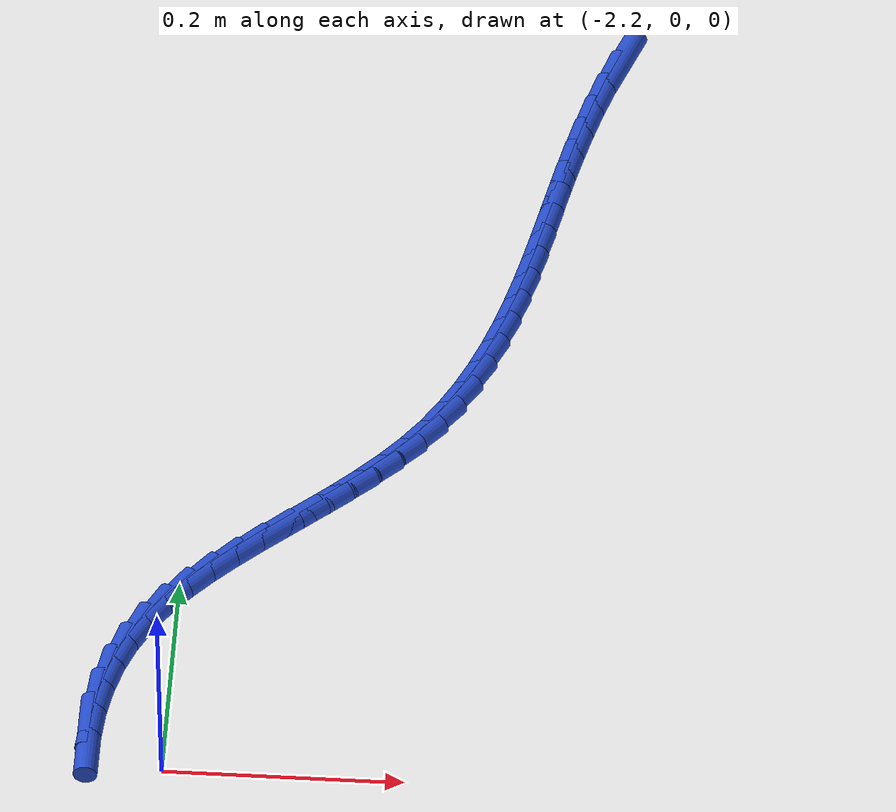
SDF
<sdf version="1.6">
 <world name="default">
  <model name="ground_plane">
   <static>1</static>
   <link name="link">
    <collision name="collision">
     <geometry><plane><normal>0 0 1</normal><size>100 100</size></plane></geometry>
     <surface><friction><ode><mu>100</mu><mu2>50</mu2></ode></friction></surface>
    </collision>
    <visual name="visual">
     <cast_shadows>0</cast_shadows>
     <geometry><plane><normal>0 0 1</normal><size>100 100</size></plane></geometry>
     <material>
      <script><uri>file://media/materials/scripts/gazebo.material</uri><name>Gazebo/WhiteGlow</name></script>
     </material>
    </visual>
   </link>
  </model>
  <model name="line">
   <link name="link_105">
    <pose>-1.857437634463661 0.8072421266115125 0.01 0 1.57 1.1970297892701074</pose>
    <collision name="collision">
     <geometry><cylinder><radius>0.01</radius><length>0.08</length></cylinder></geometry>
    </collision>
    <visual name="visual">
     <material>
      <script><name>Gazebo/Blue</name><uri>file://media/materials/scripts/gazebo.material</uri></script>
     </material>
     <geometry><cylinder><radius>0.01</radius><length>0.08</length></cylinder></geometry>
    </visual>
   </link>
   <link name="link_106">
    <pose>-1.8682525401522974 0.7796673394154205 0.01 0 1.57 1.2478210569503176</pose>
    <collision name="collision">
     <geometry><cylinder><radius>0.01</radius><length>0.08</length></cylinder></geometry>
    </collision>
    <visual name="visual">
     <material>
      <script><name>Gazebo/Blue</name><uri>file://media/materials/scripts/gazebo.material</uri></script>
     </material>
     <geometry><cylinder><radius>0.01</radius><length>0.08</length></cylinder></geometry>
    </visual>
   </link>
   <link name="link_107">
    <pose>-1.8776730771193542 0.7515206809910155 0.01 0 1.57 1.2848237730151373</pose>
    <collision name="collision">
     <geometry><cylinder><radius>0.01</radius><length>0.08</length></cylinder></geometry>
    </collision>
    <visual name="visual">
     <material>
      <script><name>Gazebo/Blue</name><uri>file://media/materials/scripts/gazebo.material</uri></script>
     </material>
     <geometry><cylinder><radius>0.01</radius><length>0.08</length></cylinder></geometry>
    </visual>
   </link>
   <link name="link_108">
    <pose>-1.8858740834647103 0.7236291314131181 0.01 0 1.57 1.311639082944351</pose>
    <collision name="collision">
     <geometry><cylinder><radius>0.01</radius><length>0.08</length></cylinder></geometry>
    </collision>
    <visual name="visual">
     <material>
      <script><name>Gazebo/Blue</name><uri>file://media/materials/scripts/gazebo.material</uri></script>
     </material>
     <geometry><cylinder><radius>0.01</radius><length>0.08</length></cylinder></geometry>
    </visual>
   </link>
   <link name="link_109">
    <pose>-1.8930516298814704 0.6965562433978943 0.01 0 1.57 1.3322568092598328</pose>
    <collision name="collision">
     <geometry><cylinder><radius>0.01</radius><length>0.08</length></cylinder></geometry>
    </collision>
    <visual name="visual">
     <material>
      <script><name>Gazebo/Blue</name><uri>file://media/materials/scripts/gazebo.material</uri></script>
     </material>
     <geometry><cylinder><radius>0.01</radius><length>0.08</length></cylinder></geometry>
    </visual>
   </link>
   <link name="link_110">
    <pose>-1.8994528415404228 0.6702321498026786 0.01 0 1.57 1.3462162577804297</pose>
    <collision name="collision">
     <geometry><cylinder><radius>0.01</radius><length>0.08</length></cylinder></geometry>
    </collision>
    <visual name="visual">
     <material>
      <script><name>Gazebo/Blue</name><uri>file://media/materials/scripts/gazebo.material</uri></script>
     </material>
     <geometry><cylinder><radius>0.01</radius><length>0.08</length></cylinder></geometry>
    </visual>
   </link>
   <link name="link_111">
    <pose>-1.9053323607936272 0.6444937197376224 0.01 0 1.57 1.352627540023294</pose>
    <collision name="collision">
     <geometry><cylinder><radius>0.01</radius><length>0.08</length></cylinder></geometry>
    </collision>
    <visual name="visual">
     <material>
      <script><name>Gazebo/Blue</name><uri>file://media/materials/scripts/gazebo.material</uri></script>
     </material>
     <geometry><cylinder><radius>0.01</radius><length>0.08</length></cylinder></geometry>
    </visual>
   </link>
   <link name="link_112">
    <pose>-1.9109448299931415 0.619177822312877 0.01 0 1.57 1.3509125454215987</pose>
    <collision name="collision">
     <geometry><cylinder><radius>0.01</radius><length>0.08</length></cylinder></geometry>
    </collision>
    <visual name="visual">
     <material>
      <script><name>Gazebo/Blue</name><uri>file://media/materials/scripts/gazebo.material</uri></script>
     </material>
     <geometry><cylinder><radius>0.01</radius><length>0.08</length></cylinder></geometry>
    </visual>
   </link>
   <link name="link_113">
    <pose>-1.9165448914910252 0.594121326638594 0.01 0 1.57 1.3408713344911745</pose>
    <collision name="collision">
     <geometry><cylinder><radius>0.01</radius><length>0.08</length></cylinder></geometry>
    </collision>
    <visual name="visual">
     <material>
      <script><name>Gazebo/Blue</name><uri>file://media/materials/scripts/gazebo.material</uri></script>
     </material>
     <geometry><cylinder><radius>0.01</radius><length>0.08</length></cylinder></geometry>
    </visual>
   </link>
   <link name="link_114">
    <pose>-1.9223871876393377 0.5691611018249255 0.01 0 1.57 1.322721238969361</pose>
    <collision name="collision">
     <geometry><cylinder><radius>0.01</radius><length>0.08</length></cylinder></geometry>
    </collision>
    <visual name="visual">
     <material>
      <script><name>Gazebo/Blue</name><uri>file://media/materials/scripts/gazebo.material</uri></script>
     </material>
     <geometry><cylinder><radius>0.01</radius><length>0.08</length></cylinder></geometry>
    </visual>
   </link>
   <link name="link_115">
    <pose>-1.9287263607901375 0.544134016982023 0.01 0 1.57 1.2971334213649508</pose>
    <collision name="collision">
     <geometry><cylinder><radius>0.01</radius><length>0.08</length></cylinder></geometry>
    </collision>
    <visual name="visual">
     <material>
      <script><name>Gazebo/Blue</name><uri>file://media/materials/scripts/gazebo.material</uri></script>
     </material>
     <geometry><cylinder><radius>0.01</radius><length>0.08</length></cylinder></geometry>
    </visual>
   </link>
   <link name="link_116">
    <pose>-1.9358002565415189 0.5189336105130489 0.01 0 1.57 1.2647416568294165</pose>
    <collision name="collision">
     <geometry><cylinder><radius>0.01</radius><length>0.08</length></cylinder></geometry>
    </collision>
    <visual name="visual">
     <material>
      <script><name>Gazebo/Blue</name><uri>file://media/materials/scripts/gazebo.material</uri></script>
     </material>
     <geometry><cylinder><radius>0.01</radius><length>0.08</length></cylinder></geometry>
    </visual>
   </link>
   <link name="link_117">
    <pose>-1.9437734941821287 0.4937004735073357 0.01 0 1.57 1.2253686413412055</pose>
    <collision name="collision">
     <geometry><cylinder><radius>0.01</radius><length>0.08</length></cylinder></geometry>
    </collision>
    <visual name="visual">
     <material>
      <script><name>Gazebo/Blue</name><uri>file://media/materials/scripts/gazebo.material</uri></script>
     </material>
     <geometry><cylinder><radius>0.01</radius><length>0.08</length></cylinder></geometry>
    </visual>
   </link>
   <link name="link_118">
    <pose>-1.9527907433108949 0.468642503797799 0.01 0 1.57 1.1786075753918535</pose>
    <collision name="collision">
     <geometry><cylinder><radius>0.01</radius><length>0.08</length></cylinder></geometry>
    </collision>
    <visual name="visual">
     <material>
      <script><name>Gazebo/Blue</name><uri>file://media/materials/scripts/gazebo.material</uri></script>
     </material>
     <geometry><cylinder><radius>0.01</radius><length>0.08</length></cylinder></geometry>
    </visual>
   </link>
   <link name="link_119">
    <pose>-1.9629966730944541 0.44396760067583174 0.01 0 1.57 1.1239856118762432</pose>
    <collision name="collision">
     <geometry><cylinder><radius>0.01</radius><length>0.08</length></cylinder></geometry>
    </collision>
    <visual name="visual">
     <material>
      <script><name>Gazebo/Blue</name><uri>file://media/materials/scripts/gazebo.material</uri></script>
     </material>
     <geometry><cylinder><radius>0.01</radius><length>0.08</length></cylinder></geometry>
    </visual>
   </link>
   <link name="link_120">
    <pose>-1.9745359526994415 0.4198836634328272 0.01 0 1.57 1.0610387306197837</pose>
    <collision name="collision">
     <geometry><cylinder><radius>0.01</radius><length>0.08</length></cylinder></geometry>
    </collision>
    <visual name="visual">
     <material>
      <script><name>Gazebo/Blue</name><uri>file://media/materials/scripts/gazebo.material</uri></script>
     </material>
     <geometry><cylinder><radius>0.01</radius><length>0.08</length></cylinder></geometry>
    </visual>
   </link>
   <link name="link_121">
    <pose>-1.9875532512924934 0.39659859136017905 0.01 0 1.57 0.9894175213454522</pose>
    <collision name="collision">
     <geometry><cylinder><radius>0.01</radius><length>0.08</length></cylinder></geometry>
    </collision>
    <visual name="visual">
     <material>
      <script><name>Gazebo/Blue</name><uri>file://media/materials/scripts/gazebo.material</uri></script>
     </material>
     <geometry><cylinder><radius>0.01</radius><length>0.08</length></cylinder></geometry>
    </visual>
   </link>
   <link name="link_122">
    <pose>-2.002193238040245 0.3743202837492802 0.01 0 1.57 0.9101367242882071</pose>
    <collision name="collision">
     <geometry><cylinder><radius>0.01</radius><length>0.08</length></cylinder></geometry>
    </collision>
    <visual name="visual">
     <material>
      <script><name>Gazebo/Blue</name><uri>file://media/materials/scripts/gazebo.material</uri></script>
     </material>
     <geometry><cylinder><radius>0.01</radius><length>0.08</length></cylinder></geometry>
    </visual>
   </link>
   <link name="link_123">
    <pose>-2.018578185954393 0.35323724018520924 0.01 0 1.57 0.8373429621150852</pose>
    <collision name="collision">
     <geometry><cylinder><radius>0.01</radius><length>0.08</length></cylinder></geometry>
    </collision>
    <visual name="visual">
     <material>
      <script><name>Gazebo/Blue</name><uri>file://media/materials/scripts/gazebo.material</uri></script>
     </material>
     <geometry><cylinder><radius>0.01</radius><length>0.08</length></cylinder></geometry>
    </visual>
   </link>
   <link name="link_124">
    <pose>-2.0365495285250383 0.33329469509188836 0.01 0 1.57 0.7805553967021097</pose>
    <collision name="collision">
     <geometry><cylinder><radius>0.01</radius><length>0.08</length></cylinder></geometry>
    </collision>
    <visual name="visual">
     <material>
      <script><name>Gazebo/Blue</name><uri>file://media/materials/scripts/gazebo.material</uri></script>
     </material>
     <geometry><cylinder><radius>0.01</radius><length>0.08</length></cylinder></geometry>
    </visual>
   </link>
   <link name="link_125">
    <pose>-2.055757286236093 0.3142720796062459 0.01 0 1.57 0.7395114604226514</pose>
    <collision name="collision">
     <geometry><cylinder><radius>0.01</radius><length>0.08</length></cylinder></geometry>
    </collision>
    <visual name="visual">
     <material>
      <script><name>Gazebo/Blue</name><uri>file://media/materials/scripts/gazebo.material</uri></script>
     </material>
     <geometry><cylinder><radius>0.01</radius><length>0.08</length></cylinder></geometry>
    </visual>
   </link>
   <link name="link_126">
    <pose>-2.0758477967706432 0.2959456347973341 0.01 0 1.57 0.713639425661834</pose>
    <collision name="collision">
     <geometry><cylinder><radius>0.01</radius><length>0.08</length></cylinder></geometry>
    </collision>
    <visual name="visual">
     <material>
      <script><name>Gazebo/Blue</name><uri>file://media/materials/scripts/gazebo.material</uri></script>
     </material>
     <geometry><cylinder><radius>0.01</radius><length>0.08</length></cylinder></geometry>
    </visual>
   </link>
   <link name="link_127">
    <pose>-2.096467397811776 0.2780916017342065 0.01 0 1.57 0.7025255158761208</pose>
    <collision name="collision">
     <geometry><cylinder><radius>0.01</radius><length>0.08</length></cylinder></geometry>
    </collision>
    <visual name="visual">
     <material>
      <script><name>Gazebo/Blue</name><uri>file://media/materials/scripts/gazebo.material</uri></script>
     </material>
     <geometry><cylinder><radius>0.01</radius><length>0.08</length></cylinder></geometry>
    </visual>
   </link>
   <link name="link_128">
    <pose>-2.1172624270425775 0.2604862214859151 0.01 0 1.57 0.7060747771207689</pose>
    <collision name="collision">
     <geometry><cylinder><radius>0.01</radius><length>0.08</length></cylinder></geometry>
    </collision>
    <visual name="visual">
     <material>
      <script><name>Gazebo/Blue</name><uri>file://media/materials/scripts/gazebo.material</uri></script>
     </material>
     <geometry><cylinder><radius>0.01</radius><length>0.08</length></cylinder></geometry>
    </visual>
   </link>
   <link name="link_129">
    <pose>-2.1378792221461356 0.24290573512151292 0.01 0 1.57 0.7245834307784874</pose>
    <collision name="collision">
     <geometry><cylinder><radius>0.01</radius><length>0.08</length></cylinder></geometry>
    </collision>
    <visual name="visual">
     <material>
      <script><name>Gazebo/Blue</name><uri>file://media/materials/scripts/gazebo.material</uri></script>
     </material>
     <geometry><cylinder><radius>0.01</radius><length>0.08</length></cylinder></geometry>
    </visual>
   </link>
   <link name="link_130">
    <pose>-2.157964120805536 0.22512638371005245 0.01 0 1.57 0.7587379191913766</pose>
    <collision name="collision">
     <geometry><cylinder><radius>0.01</radius><length>0.08</length></cylinder></geometry>
    </collision>
    <visual name="visual">
     <material>
      <script><name>Gazebo/Blue</name><uri>file://media/materials/scripts/gazebo.material</uri></script>
     </material>
     <geometry><cylinder><radius>0.01</radius><length>0.08</length></cylinder></geometry>
    </visual>
   </link>
   <link name="link_131">
    <pose>-2.1771634607038663 0.20692440832058628 0.01 0 1.57 0.8095248644595905</pose>
    <collision name="collision">
     <geometry><cylinder><radius>0.01</radius><length>0.08</length></cylinder></geometry>
    </collision>
    <visual name="visual">
     <material>
      <script><name>Gazebo/Blue</name><uri>file://media/materials/scripts/gazebo.material</uri></script>
     </material>
     <geometry><cylinder><radius>0.01</radius><length>0.08</length></cylinder></geometry>
    </visual>
   </link>
   <link name="link_132">
    <pose>-2.1951235795242123 0.18807605002216762 0.01 0 1.57 0.8780020582665584</pose>
    <collision name="collision">
     <geometry><cylinder><radius>0.01</radius><length>0.08</length></cylinder></geometry>
    </collision>
    <visual name="visual">
     <material>
      <script><name>Gazebo/Blue</name><uri>file://media/materials/scripts/gazebo.material</uri></script>
     </material>
     <geometry><cylinder><radius>0.01</radius><length>0.08</length></cylinder></geometry>
    </visual>
   </link>
   <link name="link_133">
    <pose>-2.2114908149496624 0.1683575498838489 0.01 0 1.57 0.9648586093592871</pose>
    <collision name="collision">
     <geometry><cylinder><radius>0.01</radius><length>0.08</length></cylinder></geometry>
    </collision>
    <visual name="visual">
     <material>
      <script><name>Gazebo/Blue</name><uri>file://media/materials/scripts/gazebo.material</uri></script>
     </material>
     <geometry><cylinder><radius>0.01</radius><length>0.08</length></cylinder></geometry>
    </visual>
   </link>
   <link name="link_134">
    <pose>-2.2259115046633022 0.1475451489746828 0.01 0 1.57 1.069679613727929</pose>
    <collision name="collision">
     <geometry><cylinder><radius>0.01</radius><length>0.08</length></cylinder></geometry>
    </collision>
    <visual name="visual">
     <material>
      <script><name>Gazebo/Blue</name><uri>file://media/materials/scripts/gazebo.material</uri></script>
     </material>
     <geometry><cylinder><radius>0.01</radius><length>0.08</length></cylinder></geometry>
    </visual>
   </link>
   <link name="link_135">
    <pose>-2.2380328419563487 0.12541596089663998 0.01 0 1.57 1.1836727214730394</pose>
    <collision name="collision">
     <geometry><cylinder><radius>0.01</radius><length>0.08</length></cylinder></geometry>
    </collision>
    <visual name="visual">
     <material>
      <script><name>Gazebo/Blue</name><uri>file://media/materials/scripts/gazebo.material</uri></script>
     </material>
     <geometry><cylinder><radius>0.01</radius><length>0.08</length></cylinder></geometry>
    </visual>
   </link>
   <link name="link_136">
    <pose>-2.2476295367943155 0.10187713833393872 0.01 0 1.57 1.2913736042680988</pose>
    <collision name="collision">
     <geometry><cylinder><radius>0.01</radius><length>0.08</length></cylinder></geometry>
    </collision>
    <visual name="visual">
     <material>
      <script><name>Gazebo/Blue</name><uri>file://media/materials/scripts/gazebo.material</uri></script>
     </material>
     <geometry><cylinder><radius>0.01</radius><length>0.08</length></cylinder></geometry>
    </visual>
   </link>
   <link name="link_137">
    <pose>-2.2547380376487194 0.07710274992744649 0.01 0 1.57 1.391039792683045</pose>
    <collision name="collision">
     <geometry><cylinder><radius>0.01</radius><length>0.08</length></cylinder></geometry>
    </collision>
    <visual name="visual">
     <material>
      <script><name>Gazebo/Blue</name><uri>file://media/materials/scripts/gazebo.material</uri></script>
     </material>
     <geometry><cylinder><radius>0.01</radius><length>0.08</length></cylinder></geometry>
    </visual>
   </link>
   <link name="link_138">
    <pose>-2.2594269283455692 0.051299635342125637 0.01 0 1.57 1.4832138467309943</pose>
    <collision name="collision">
     <geometry><cylinder><radius>0.01</radius><length>0.08</length></cylinder></geometry>
    </collision>
    <visual name="visual">
     <material>
      <script><name>Gazebo/Blue</name><uri>file://media/materials/scripts/gazebo.material</uri></script>
     </material>
     <geometry><cylinder><radius>0.01</radius><length>0.08</length></cylinder></geometry>
    </visual>
   </link>
   <link name="link_139">
    <pose>-2.2617647927108737 0.02467463424293844 0.01 0 1.57 1.5687617568338212</pose>
    <collision name="collision">
     <geometry><cylinder><radius>0.01</radius><length>0.08</length></cylinder></geometry>
    </collision>
    <visual name="visual">
     <material>
      <script><name>Gazebo/Blue</name><uri>file://media/materials/scripts/gazebo.material</uri></script>
     </material>
     <geometry><cylinder><radius>0.01</radius><length>0.08</length></cylinder></geometry>
    </visual>
   </link>
  </model>
 </world>
</sdf>
